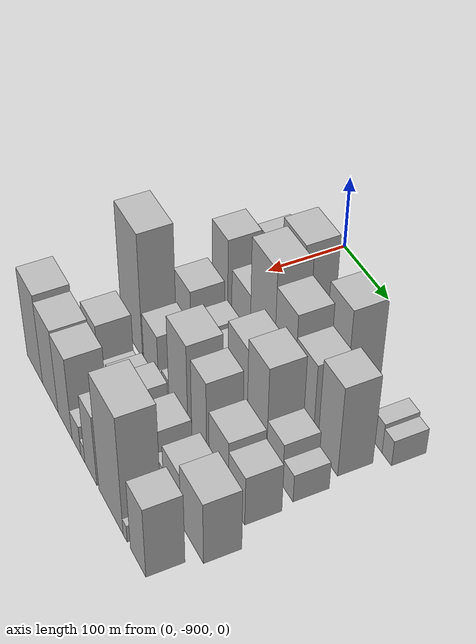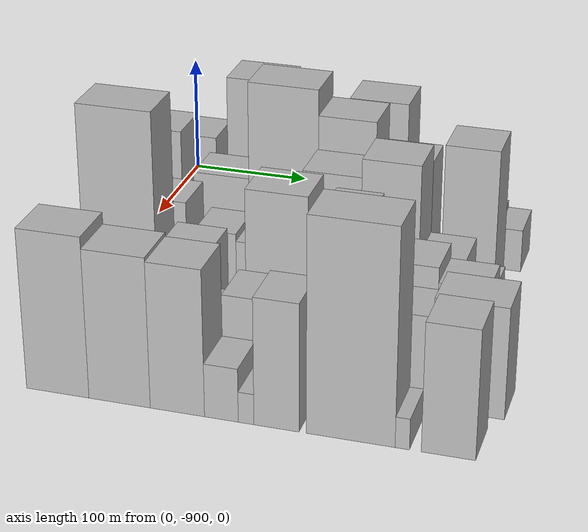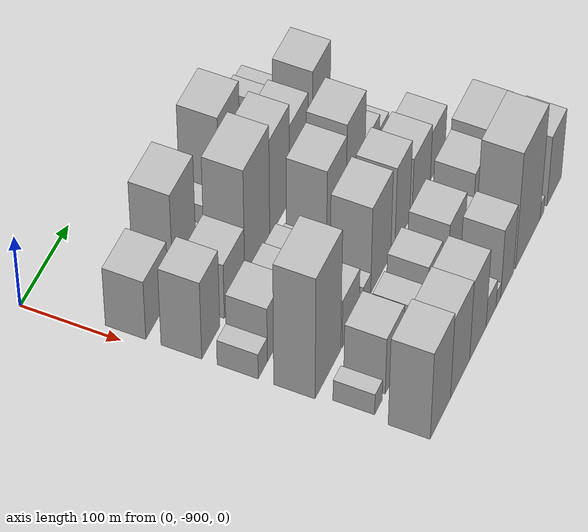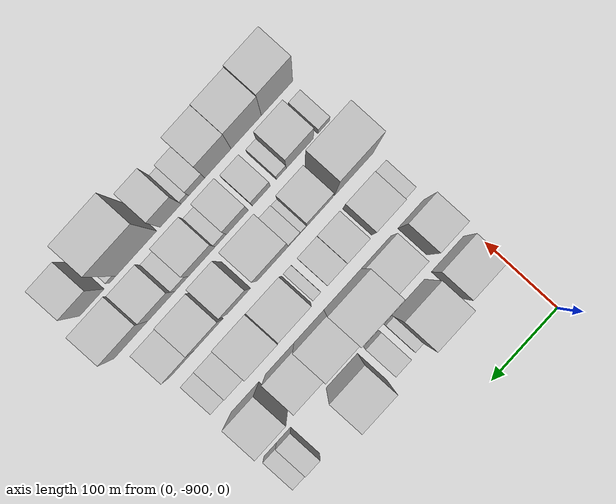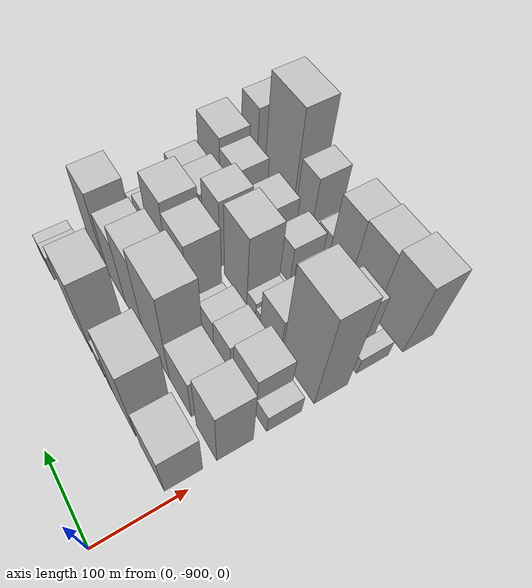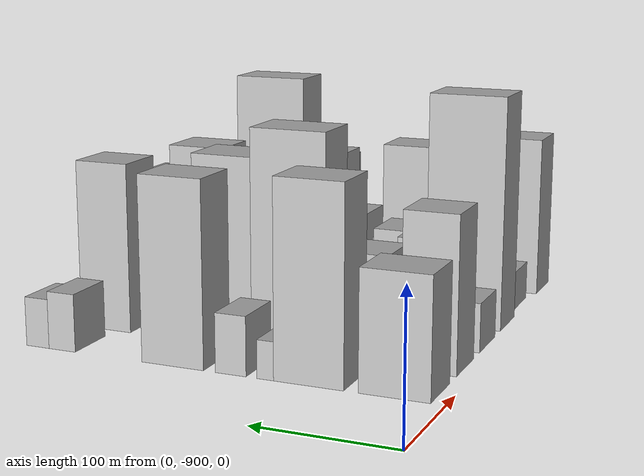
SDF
<sdf version="1.6">
 <world name="default">
  <model name="building_1">
   <static>1</static>
   <pose>100.0000 -865.4337 0 0.000000 0.000000 0.000000</pose>
   <link name="link">
    <pose>0 0 42.00 0 0 0</pose>
    <collision name="collision"><geometry><box><size>40.0000 49.1326 84.0000</size></box></geometry></collision>
    <visual name="visual">
     <cast_shadows>0</cast_shadows>
     <geometry><box><size>40.0000 49.1326 84.0000</size></box></geometry>
     <material>
      <script>
       <uri>model://HANNAS_wall/materials/scripts</uri>
       <uri>model://HANNAS_wall/materials/textures</uri>
       <name>vrc/HANNAS_wall</name>
      </script>
     </material>
    </visual>
   </link>
  </model>
  <model name="building_2">
   <static>1</static>
   <pose>100.0000 -805.9090 0 0.000000 0.000000 0.000000</pose>
   <link name="link">
    <pose>0 0 69.00 0 0 0</pose>
    <collision name="collision"><geometry><box><size>40.0000 49.9168 138.0000</size></box></geometry></collision>
    <visual name="visual">
     <cast_shadows>0</cast_shadows>
     <geometry><box><size>40.0000 49.9168 138.0000</size></box></geometry>
     <material>
      <script>
       <uri>model://HANNAS_wall/materials/scripts</uri>
       <uri>model://HANNAS_wall/materials/textures</uri>
       <name>vrc/HANNAS_wall</name>
      </script>
     </material>
    </visual>
   </link>
  </model>
  <model name="building_3">
   <static>1</static>
   <pose>100.0000 -774.8887 0 0.000000 0.000000 0.000000</pose>
   <link name="link">
    <pose>0 0 13.50 0 0 0</pose>
    <collision name="collision"><geometry><box><size>40.0000 12.1238 27.0000</size></box></geometry></collision>
    <visual name="visual">
     <cast_shadows>0</cast_shadows>
     <geometry><box><size>40.0000 12.1238 27.0000</size></box></geometry>
     <material>
      <script>
       <uri>model://HANNAS_wall/materials/scripts</uri>
       <uri>model://HANNAS_wall/materials/textures</uri>
       <name>vrc/HANNAS_wall</name>
      </script>
     </material>
    </visual>
   </link>
  </model>
  <model name="building_4">
   <static>1</static>
   <pose>100.0000 -749.3840 0 0.000000 0.000000 0.000000</pose>
   <link name="link">
    <pose>0 0 21.00 0 0 0</pose>
    <collision name="collision"><geometry><box><size>40.0000 22.8857 42.0000</size></box></geometry></collision>
    <visual name="visual">
     <cast_shadows>0</cast_shadows>
     <geometry><box><size>40.0000 22.8857 42.0000</size></box></geometry>
     <material>
      <script>
       <uri>model://HANNAS_wall/materials/scripts</uri>
       <uri>model://HANNAS_wall/materials/textures</uri>
       <name>vrc/HANNAS_wall</name>
      </script>
     </material>
    </visual>
   </link>
  </model>
  <model name="building_5">
   <static>1</static>
   <pose>100.0000 -705.1346 0 0.000000 0.000000 0.000000</pose>
   <link name="link">
    <pose>0 0 66.00 0 0 0</pose>
    <collision name="collision"><geometry><box><size>40.0000 47.6131 132.0000</size></box></geometry></collision>
    <visual name="visual">
     <cast_shadows>0</cast_shadows>
     <geometry><box><size>40.0000 47.6131 132.0000</size></box></geometry>
     <material>
      <script>
       <uri>model://HANNAS_wall/materials/scripts</uri>
       <uri>model://HANNAS_wall/materials/textures</uri>
       <name>vrc/HANNAS_wall</name>
      </script>
     </material>
    </visual>
   </link>
  </model>
  <model name="building_6">
   <static>1</static>
   <pose>100.0000 -616.7171 0 0.000000 0.000000 0.000000</pose>
   <link name="link">
    <pose>0 0 21.00 0 0 0</pose>
    <collision name="collision"><geometry><box><size>40.0000 21.7406 42.0000</size></box></geometry></collision>
    <visual name="visual">
     <cast_shadows>0</cast_shadows>
     <geometry><box><size>40.0000 21.7406 42.0000</size></box></geometry>
     <material>
      <script>
       <uri>model://HANNAS_wall/materials/scripts</uri>
       <uri>model://HANNAS_wall/materials/textures</uri>
       <name>vrc/HANNAS_wall</name>
      </script>
     </material>
    </visual>
   </link>
  </model>
  <model name="building_7">
   <static>1</static>
   <pose>100.0000 -596.4582 0 0.000000 0.000000 0.000000</pose>
   <link name="link">
    <pose>0 0 18.00 0 0 0</pose>
    <collision name="collision"><geometry><box><size>40.0000 18.7772 36.0000</size></box></geometry></collision>
    <visual name="visual">
     <cast_shadows>0</cast_shadows>
     <geometry><box><size>40.0000 18.7772 36.0000</size></box></geometry>
     <material>
      <script>
       <uri>model://HANNAS_wall/materials/scripts</uri>
       <uri>model://HANNAS_wall/materials/textures</uri>
       <name>vrc/HANNAS_wall</name>
      </script>
     </material>
    </visual>
   </link>
  </model>
  <model name="building_54">
   <static>1</static>
   <pose>155.0000 -870.3266 0 0.000000 0.000000 0.000000</pose>
   <link name="link">
    <pose>0 0 55.50 0 0 0</pose>
    <collision name="collision"><geometry><box><size>40.0000 39.3467 111.0000</size></box></geometry></collision>
    <visual name="visual">
     <cast_shadows>0</cast_shadows>
     <geometry><box><size>40.0000 39.3467 111.0000</size></box></geometry>
     <material>
      <script>
       <uri>model://HANNAS_wall/materials/scripts</uri>
       <uri>model://HANNAS_wall/materials/textures</uri>
       <name>vrc/HANNAS_wall</name>
      </script>
     </material>
    </visual>
   </link>
  </model>
  <model name="building_55">
   <static>1</static>
   <pose>155.0000 -817.9297 0 0.000000 0.000000 0.000000</pose>
   <link name="link">
    <pose>0 0 39.00 0 0 0</pose>
    <collision name="collision"><geometry><box><size>40.0000 45.4471 78.0000</size></box></geometry></collision>
    <visual name="visual">
     <cast_shadows>0</cast_shadows>
     <geometry><box><size>40.0000 45.4471 78.0000</size></box></geometry>
     <material>
      <script>
       <uri>model://HANNAS_wall/materials/scripts</uri>
       <uri>model://HANNAS_wall/materials/textures</uri>
       <name>vrc/HANNAS_wall</name>
      </script>
     </material>
    </visual>
   </link>
  </model>
  <model name="building_56">
   <static>1</static>
   <pose>155.0000 -767.0032 0 0.000000 0.000000 0.000000</pose>
   <link name="link">
    <pose>0 0 79.50 0 0 0</pose>
    <collision name="collision"><geometry><box><size>40.0000 56.4059 159.0000</size></box></geometry></collision>
    <visual name="visual">
     <cast_shadows>0</cast_shadows>
     <geometry><box><size>40.0000 56.4059 159.0000</size></box></geometry>
     <material>
      <script>
       <uri>model://HANNAS_wall/materials/scripts</uri>
       <uri>model://HANNAS_wall/materials/textures</uri>
       <name>vrc/HANNAS_wall</name>
      </script>
     </material>
    </visual>
   </link>
  </model>
  <model name="building_57">
   <static>1</static>
   <pose>155.0000 -716.0120 0 0.000000 0.000000 0.000000</pose>
   <link name="link">
    <pose>0 0 69.00 0 0 0</pose>
    <collision name="collision"><geometry><box><size>40.0000 45.5765 138.0000</size></box></geometry></collision>
    <visual name="visual">
     <cast_shadows>0</cast_shadows>
     <geometry><box><size>40.0000 45.5765 138.0000</size></box></geometry>
     <material>
      <script>
       <uri>model://HANNAS_wall/materials/scripts</uri>
       <uri>model://HANNAS_wall/materials/textures</uri>
       <name>vrc/HANNAS_wall</name>
      </script>
     </material>
    </visual>
   </link>
  </model>
  <model name="building_58">
   <static>1</static>
   <pose>155.0000 -671.6950 0 0.000000 0.000000 0.000000</pose>
   <link name="link">
    <pose>0 0 54.00 0 0 0</pose>
    <collision name="collision"><geometry><box><size>40.0000 43.0575 108.0000</size></box></geometry></collision>
    <visual name="visual">
     <cast_shadows>0</cast_shadows>
     <geometry><box><size>40.0000 43.0575 108.0000</size></box></geometry>
     <material>
      <script>
       <uri>model://HANNAS_wall/materials/scripts</uri>
       <uri>model://HANNAS_wall/materials/textures</uri>
       <name>vrc/HANNAS_wall</name>
      </script>
     </material>
    </visual>
   </link>
  </model>
  <model name="building_59">
   <static>1</static>
   <pose>155.0000 -619.2268 0 0.000000 0.000000 0.000000</pose>
   <link name="link">
    <pose>0 0 63.00 0 0 0</pose>
    <collision name="collision"><geometry><box><size>40.0000 41.8789 126.0000</size></box></geometry></collision>
    <visual name="visual">
     <cast_shadows>0</cast_shadows>
     <geometry><box><size>40.0000 41.8789 126.0000</size></box></geometry>
     <material>
      <script>
       <uri>model://HANNAS_wall/materials/scripts</uri>
       <uri>model://HANNAS_wall/materials/textures</uri>
       <name>vrc/HANNAS_wall</name>
      </script>
     </material>
    </visual>
   </link>
  </model>
  <model name="building_100">
   <static>1</static>
   <pose>210.0000 -879.9022 0 0.000000 0.000000 0.000000</pose>
   <link name="link">
    <pose>0 0 18.00 0 0 0</pose>
    <collision name="collision"><geometry><box><size>40.0000 20.1956 36.0000</size></box></geometry></collision>
    <visual name="visual">
     <cast_shadows>0</cast_shadows>
     <geometry><box><size>40.0000 20.1956 36.0000</size></box></geometry>
     <material>
      <script>
       <uri>model://HANNAS_wall/materials/scripts</uri>
       <uri>model://HANNAS_wall/materials/textures</uri>
       <name>vrc/HANNAS_wall</name>
      </script>
     </material>
    </visual>
   </link>
  </model>
  <model name="building_101">
   <static>1</static>
   <pose>210.0000 -848.7890 0 0.000000 0.000000 0.000000</pose>
   <link name="link">
    <pose>0 0 39.00 0 0 0</pose>
    <collision name="collision"><geometry><box><size>40.0000 42.0309 78.0000</size></box></geometry></collision>
    <visual name="visual">
     <cast_shadows>0</cast_shadows>
     <geometry><box><size>40.0000 42.0309 78.0000</size></box></geometry>
     <material>
      <script>
       <uri>model://HANNAS_wall/materials/scripts</uri>
       <uri>model://HANNAS_wall/materials/textures</uri>
       <name>vrc/HANNAS_wall</name>
      </script>
     </material>
    </visual>
   </link>
  </model>
  <model name="building_102">
   <static>1</static>
   <pose>210.0000 -804.4169 0 0.000000 0.000000 0.000000</pose>
   <link name="link">
    <pose>0 0 28.50 0 0 0</pose>
    <collision name="collision"><geometry><box><size>40.0000 32.7133 57.0000</size></box></geometry></collision>
    <visual name="visual">
     <cast_shadows>0</cast_shadows>
     <geometry><box><size>40.0000 32.7133 57.0000</size></box></geometry>
     <material>
      <script>
       <uri>model://HANNAS_wall/materials/scripts</uri>
       <uri>model://HANNAS_wall/materials/textures</uri>
       <name>vrc/HANNAS_wall</name>
      </script>
     </material>
    </visual>
   </link>
  </model>
  <model name="building_103">
   <static>1</static>
   <pose>210.0000 -773.6252 0 0.000000 0.000000 0.000000</pose>
   <link name="link">
    <pose>0 0 25.50 0 0 0</pose>
    <collision name="collision"><geometry><box><size>40.0000 28.8702 51.0000</size></box></geometry></collision>
    <visual name="visual">
     <cast_shadows>0</cast_shadows>
     <geometry><box><size>40.0000 28.8702 51.0000</size></box></geometry>
     <material>
      <script>
       <uri>model://HANNAS_wall/materials/scripts</uri>
       <uri>model://HANNAS_wall/materials/textures</uri>
       <name>vrc/HANNAS_wall</name>
      </script>
     </material>
    </visual>
   </link>
  </model>
  <model name="building_104">
   <static>1</static>
   <pose>210.0000 -744.2525 0 0.000000 0.000000 0.000000</pose>
   <link name="link">
    <pose>0 0 13.50 0 0 0</pose>
    <collision name="collision"><geometry><box><size>40.0000 11.8750 27.0000</size></box></geometry></collision>
    <visual name="visual">
     <cast_shadows>0</cast_shadows>
     <geometry><box><size>40.0000 11.8750 27.0000</size></box></geometry>
     <material>
      <script>
       <uri>model://HANNAS_wall/materials/scripts</uri>
       <uri>model://HANNAS_wall/materials/textures</uri>
       <name>vrc/HANNAS_wall</name>
      </script>
     </material>
    </visual>
   </link>
  </model>
  <model name="building_105">
   <static>1</static>
   <pose>210.0000 -712.7268 0 0.000000 0.000000 0.000000</pose>
   <link name="link">
    <pose>0 0 58.50 0 0 0</pose>
    <collision name="collision"><geometry><box><size>40.0000 45.1766 117.0000</size></box></geometry></collision>
    <visual name="visual">
     <cast_shadows>0</cast_shadows>
     <geometry><box><size>40.0000 45.1766 117.0000</size></box></geometry>
     <material>
      <script>
       <uri>model://HANNAS_wall/materials/scripts</uri>
       <uri>model://HANNAS_wall/materials/textures</uri>
       <name>vrc/HANNAS_wall</name>
      </script>
     </material>
    </visual>
   </link>
  </model>
  <model name="building_106">
   <static>1</static>
   <pose>210.0000 -667.9759 0 0.000000 0.000000 0.000000</pose>
   <link name="link">
    <pose>0 0 66.00 0 0 0</pose>
    <collision name="collision"><geometry><box><size>40.0000 44.3251 132.0000</size></box></geometry></collision>
    <visual name="visual">
     <cast_shadows>0</cast_shadows>
     <geometry><box><size>40.0000 44.3251 132.0000</size></box></geometry>
     <material>
      <script>
       <uri>model://HANNAS_wall/materials/scripts</uri>
       <uri>model://HANNAS_wall/materials/textures</uri>
       <name>vrc/HANNAS_wall</name>
      </script>
     </material>
    </visual>
   </link>
  </model>
  <model name="building_107">
   <static>1</static>
   <pose>210.0000 -628.2667 0 0.000000 0.000000 0.000000</pose>
   <link name="link">
    <pose>0 0 30.00 0 0 0</pose>
    <collision name="collision"><geometry><box><size>40.0000 35.0933 60.0000</size></box></geometry></collision>
    <visual name="visual">
     <cast_shadows>0</cast_shadows>
     <geometry><box><size>40.0000 35.0933 60.0000</size></box></geometry>
     <material>
      <script>
       <uri>model://HANNAS_wall/materials/scripts</uri>
       <uri>model://HANNAS_wall/materials/textures</uri>
       <name>vrc/HANNAS_wall</name>
      </script>
     </material>
    </visual>
   </link>
  </model>
  <model name="building_108">
   <static>1</static>
   <pose>210.0000 -599.4378 0 0.000000 0.000000 0.000000</pose>
   <link name="link">
    <pose>0 0 19.50 0 0 0</pose>
    <collision name="collision"><geometry><box><size>40.0000 22.5645 39.0000</size></box></geometry></collision>
    <visual name="visual">
     <cast_shadows>0</cast_shadows>
     <geometry><box><size>40.0000 22.5645 39.0000</size></box></geometry>
     <material>
      <script>
       <uri>model://HANNAS_wall/materials/scripts</uri>
       <uri>model://HANNAS_wall/materials/textures</uri>
       <name>vrc/HANNAS_wall</name>
      </script>
     </material>
    </visual>
   </link>
  </model>
  <model name="building_149">
   <static>1</static>
   <pose>265.0000 -860.9510 0 0.000000 0.000000 0.000000</pose>
   <link name="link">
    <pose>0 0 87.00 0 0 0</pose>
    <collision name="collision"><geometry><box><size>40.0000 58.0979 174.0000</size></box></geometry></collision>
    <visual name="visual">
     <cast_shadows>0</cast_shadows>
     <geometry><box><size>40.0000 58.0979 174.0000</size></box></geometry>
     <material>
      <script>
       <uri>model://HANNAS_wall/materials/scripts</uri>
       <uri>model://HANNAS_wall/materials/textures</uri>
       <name>vrc/HANNAS_wall</name>
      </script>
     </material>
    </visual>
   </link>
  </model>
  <model name="building_150">
   <static>1</static>
   <pose>265.0000 -809.2157 0 0.000000 0.000000 0.000000</pose>
   <link name="link">
    <pose>0 0 34.50 0 0 0</pose>
    <collision name="collision"><geometry><box><size>40.0000 39.3727 69.0000</size></box></geometry></collision>
    <visual name="visual">
     <cast_shadows>0</cast_shadows>
     <geometry><box><size>40.0000 39.3727 69.0000</size></box></geometry>
     <material>
      <script>
       <uri>model://HANNAS_wall/materials/scripts</uri>
       <uri>model://HANNAS_wall/materials/textures</uri>
       <name>vrc/HANNAS_wall</name>
      </script>
     </material>
    </visual>
   </link>
  </model>
  <model name="building_151">
   <static>1</static>
   <pose>265.0000 -784.8930 0 0.000000 0.000000 0.000000</pose>
   <link name="link">
    <pose>0 0 10.50 0 0 0</pose>
    <collision name="collision"><geometry><box><size>40.0000 9.2728 21.0000</size></box></geometry></collision>
    <visual name="visual">
     <cast_shadows>0</cast_shadows>
     <geometry><box><size>40.0000 9.2728 21.0000</size></box></geometry>
     <material>
      <script>
       <uri>model://HANNAS_wall/materials/scripts</uri>
       <uri>model://HANNAS_wall/materials/textures</uri>
       <name>vrc/HANNAS_wall</name>
      </script>
     </material>
    </visual>
   </link>
  </model>
  <model name="building_152">
   <static>1</static>
   <pose>265.0000 -771.2846 0 0.000000 0.000000 0.000000</pose>
   <link name="link">
    <pose>0 0 15.00 0 0 0</pose>
    <collision name="collision"><geometry><box><size>40.0000 17.9439 30.0000</size></box></geometry></collision>
    <visual name="visual">
     <cast_shadows>0</cast_shadows>
     <geometry><box><size>40.0000 17.9439 30.0000</size></box></geometry>
     <material>
      <script>
       <uri>model://HANNAS_wall/materials/scripts</uri>
       <uri>model://HANNAS_wall/materials/textures</uri>
       <name>vrc/HANNAS_wall</name>
      </script>
     </material>
    </visual>
   </link>
  </model>
  <model name="building_153">
   <static>1</static>
   <pose>265.0000 -738.6752 0 0.000000 0.000000 0.000000</pose>
   <link name="link">
    <pose>0 0 61.50 0 0 0</pose>
    <collision name="collision"><geometry><box><size>40.0000 47.2751 123.0000</size></box></geometry></collision>
    <visual name="visual">
     <cast_shadows>0</cast_shadows>
     <geometry><box><size>40.0000 47.2751 123.0000</size></box></geometry>
     <material>
      <script>
       <uri>model://HANNAS_wall/materials/scripts</uri>
       <uri>model://HANNAS_wall/materials/textures</uri>
       <name>vrc/HANNAS_wall</name>
      </script>
     </material>
    </visual>
   </link>
  </model>
  <model name="building_154">
   <static>1</static>
   <pose>265.0000 -687.3267 0 0.000000 0.000000 0.000000</pose>
   <link name="link">
    <pose>0 0 57.00 0 0 0</pose>
    <collision name="collision"><geometry><box><size>40.0000 35.4218 114.0000</size></box></geometry></collision>
    <visual name="visual">
     <cast_shadows>0</cast_shadows>
     <geometry><box><size>40.0000 35.4218 114.0000</size></box></geometry>
     <material>
      <script>
       <uri>model://HANNAS_wall/materials/scripts</uri>
       <uri>model://HANNAS_wall/materials/textures</uri>
       <name>vrc/HANNAS_wall</name>
      </script>
     </material>
    </visual>
   </link>
  </model>
  <model name="building_155">
   <static>1</static>
   <pose>265.0000 -641.3528 0 0.000000 0.000000 0.000000</pose>
   <link name="link">
    <pose>0 0 40.50 0 0 0</pose>
    <collision name="collision"><geometry><box><size>40.0000 44.5261 81.0000</size></box></geometry></collision>
    <visual name="visual">
     <cast_shadows>0</cast_shadows>
     <geometry><box><size>40.0000 44.5261 81.0000</size></box></geometry>
     <material>
      <script>
       <uri>model://HANNAS_wall/materials/scripts</uri>
       <uri>model://HANNAS_wall/materials/textures</uri>
       <name>vrc/HANNAS_wall</name>
      </script>
     </material>
    </visual>
   </link>
  </model>
  <model name="building_156">
   <static>1</static>
   <pose>265.0000 -600.9685 0 0.000000 0.000000 0.000000</pose>
   <link name="link">
    <pose>0 0 34.50 0 0 0</pose>
    <collision name="collision"><geometry><box><size>40.0000 36.2424 69.0000</size></box></geometry></collision>
    <visual name="visual">
     <cast_shadows>0</cast_shadows>
     <geometry><box><size>40.0000 36.2424 69.0000</size></box></geometry>
     <material>
      <script>
       <uri>model://HANNAS_wall/materials/scripts</uri>
       <uri>model://HANNAS_wall/materials/textures</uri>
       <name>vrc/HANNAS_wall</name>
      </script>
     </material>
    </visual>
   </link>
  </model>
  <model name="building_198">
   <static>1</static>
   <pose>320.0000 -876.2742 0 0.000000 0.000000 0.000000</pose>
   <link name="link">
    <pose>0 0 15.00 0 0 0</pose>
    <collision name="collision"><geometry><box><size>40.0000 17.4515 30.0000</size></box></geometry></collision>
    <visual name="visual">
     <cast_shadows>0</cast_shadows>
     <geometry><box><size>40.0000 17.4515 30.0000</size></box></geometry>
     <material>
      <script>
       <uri>model://HANNAS_wall/materials/scripts</uri>
       <uri>model://HANNAS_wall/materials/textures</uri>
       <name>vrc/HANNAS_wall</name>
      </script>
     </material>
    </visual>
   </link>
  </model>
  <model name="building_199">
   <static>1</static>
   <pose>320.0000 -840.0806 0 0.000000 0.000000 0.000000</pose>
   <link name="link">
    <pose>0 0 40.50 0 0 0</pose>
    <collision name="collision"><geometry><box><size>40.0000 40.9357 81.0000</size></box></geometry></collision>
    <visual name="visual">
     <cast_shadows>0</cast_shadows>
     <geometry><box><size>40.0000 40.9357 81.0000</size></box></geometry>
     <material>
      <script>
       <uri>model://HANNAS_wall/materials/scripts</uri>
       <uri>model://HANNAS_wall/materials/textures</uri>
       <name>vrc/HANNAS_wall</name>
      </script>
     </material>
    </visual>
   </link>
  </model>
  <model name="building_200">
   <static>1</static>
   <pose>320.0000 -812.1042 0 0.000000 0.000000 0.000000</pose>
   <link name="link">
    <pose>0 0 15.00 0 0 0</pose>
    <collision name="collision"><geometry><box><size>40.0000 15.0173 30.0000</size></box></geometry></collision>
    <visual name="visual">
     <cast_shadows>0</cast_shadows>
     <geometry><box><size>40.0000 15.0173 30.0000</size></box></geometry>
     <material>
      <script>
       <uri>model://HANNAS_wall/materials/scripts</uri>
       <uri>model://HANNAS_wall/materials/textures</uri>
       <name>vrc/HANNAS_wall</name>
      </script>
     </material>
    </visual>
   </link>
  </model>
  <model name="building_201">
   <static>1</static>
   <pose>320.0000 -781.9552 0 0.000000 0.000000 0.000000</pose>
   <link name="link">
    <pose>0 0 24.00 0 0 0</pose>
    <collision name="collision"><geometry><box><size>40.0000 27.2806 48.0000</size></box></geometry></collision>
    <visual name="visual">
     <cast_shadows>0</cast_shadows>
     <geometry><box><size>40.0000 27.2806 48.0000</size></box></geometry>
     <material>
      <script>
       <uri>model://HANNAS_wall/materials/scripts</uri>
       <uri>model://HANNAS_wall/materials/textures</uri>
       <name>vrc/HANNAS_wall</name>
      </script>
     </material>
    </visual>
   </link>
  </model>
  <model name="building_202">
   <static>1</static>
   <pose>320.0000 -745.6546 0 0.000000 0.000000 0.000000</pose>
   <link name="link">
    <pose>0 0 33.00 0 0 0</pose>
    <collision name="collision"><geometry><box><size>40.0000 33.3207 66.0000</size></box></geometry></collision>
    <visual name="visual">
     <cast_shadows>0</cast_shadows>
     <geometry><box><size>40.0000 33.3207 66.0000</size></box></geometry>
     <material>
      <script>
       <uri>model://HANNAS_wall/materials/scripts</uri>
       <uri>model://HANNAS_wall/materials/textures</uri>
       <name>vrc/HANNAS_wall</name>
      </script>
     </material>
    </visual>
   </link>
  </model>
  <model name="building_203">
   <static>1</static>
   <pose>320.0000 -720.6482 0 0.000000 0.000000 0.000000</pose>
   <link name="link">
    <pose>0 0 16.50 0 0 0</pose>
    <collision name="collision"><geometry><box><size>40.0000 16.6921 33.0000</size></box></geometry></collision>
    <visual name="visual">
     <cast_shadows>0</cast_shadows>
     <geometry><box><size>40.0000 16.6921 33.0000</size></box></geometry>
     <material>
      <script>
       <uri>model://HANNAS_wall/materials/scripts</uri>
       <uri>model://HANNAS_wall/materials/textures</uri>
       <name>vrc/HANNAS_wall</name>
      </script>
     </material>
    </visual>
   </link>
  </model>
  <model name="building_204">
   <static>1</static>
   <pose>320.0000 -691.6612 0 0.000000 0.000000 0.000000</pose>
   <link name="link">
    <pose>0 0 34.50 0 0 0</pose>
    <collision name="collision"><geometry><box><size>40.0000 41.2819 69.0000</size></box></geometry></collision>
    <visual name="visual">
     <cast_shadows>0</cast_shadows>
     <geometry><box><size>40.0000 41.2819 69.0000</size></box></geometry>
     <material>
      <script>
       <uri>model://HANNAS_wall/materials/scripts</uri>
       <uri>model://HANNAS_wall/materials/textures</uri>
       <name>vrc/HANNAS_wall</name>
      </script>
     </material>
    </visual>
   </link>
  </model>
  <model name="building_205">
   <static>1</static>
   <pose>320.0000 -660.9012 0 0.000000 0.000000 0.000000</pose>
   <link name="link">
    <pose>0 0 19.50 0 0 0</pose>
    <collision name="collision"><geometry><box><size>40.0000 20.2382 39.0000</size></box></geometry></collision>
    <visual name="visual">
     <cast_shadows>0</cast_shadows>
     <geometry><box><size>40.0000 20.2382 39.0000</size></box></geometry>
     <material>
      <script>
       <uri>model://HANNAS_wall/materials/scripts</uri>
       <uri>model://HANNAS_wall/materials/textures</uri>
       <name>vrc/HANNAS_wall</name>
      </script>
     </material>
    </visual>
   </link>
  </model>
  <model name="building_206">
   <static>1</static>
   <pose>320.0000 -630.5078 0 0.000000 0.000000 0.000000</pose>
   <link name="link">
    <pose>0 0 36.00 0 0 0</pose>
    <collision name="collision"><geometry><box><size>40.0000 40.5485 72.0000</size></box></geometry></collision>
    <visual name="visual">
     <cast_shadows>0</cast_shadows>
     <geometry><box><size>40.0000 40.5485 72.0000</size></box></geometry>
     <material>
      <script>
       <uri>model://HANNAS_wall/materials/scripts</uri>
       <uri>model://HANNAS_wall/materials/textures</uri>
       <name>vrc/HANNAS_wall</name>
      </script>
     </material>
    </visual>
   </link>
  </model>
  <model name="building_207">
   <static>1</static>
   <pose>320.0000 -584.3606 0 0.000000 0.000000 0.000000</pose>
   <link name="link">
    <pose>0 0 43.50 0 0 0</pose>
    <collision name="collision"><geometry><box><size>40.0000 51.7460 87.0000</size></box></geometry></collision>
    <visual name="visual">
     <cast_shadows>0</cast_shadows>
     <geometry><box><size>40.0000 51.7460 87.0000</size></box></geometry>
     <material>
      <script>
       <uri>model://HANNAS_wall/materials/scripts</uri>
       <uri>model://HANNAS_wall/materials/textures</uri>
       <name>vrc/HANNAS_wall</name>
      </script>
     </material>
    </visual>
   </link>
  </model>
  <model name="building_244">
   <static>1</static>
   <pose>375.0000 -866.3090 0 0.000000 0.000000 0.000000</pose>
   <link name="link">
    <pose>0 0 63.00 0 0 0</pose>
    <collision name="collision"><geometry><box><size>40.0000 47.3820 126.0000</size></box></geometry></collision>
    <visual name="visual">
     <cast_shadows>0</cast_shadows>
     <geometry><box><size>40.0000 47.3820 126.0000</size></box></geometry>
     <material>
      <script>
       <uri>model://HANNAS_wall/materials/scripts</uri>
       <uri>model://HANNAS_wall/materials/textures</uri>
       <name>vrc/HANNAS_wall</name>
      </script>
     </material>
    </visual>
   </link>
  </model>
  <model name="building_245">
   <static>1</static>
   <pose>375.0000 -819.7347 0 0.000000 0.000000 0.000000</pose>
   <link name="link">
    <pose>0 0 58.50 0 0 0</pose>
    <collision name="collision"><geometry><box><size>40.0000 45.7667 117.0000</size></box></geometry></collision>
    <visual name="visual">
     <cast_shadows>0</cast_shadows>
     <geometry><box><size>40.0000 45.7667 117.0000</size></box></geometry>
     <material>
      <script>
       <uri>model://HANNAS_wall/materials/scripts</uri>
       <uri>model://HANNAS_wall/materials/textures</uri>
       <name>vrc/HANNAS_wall</name>
      </script>
     </material>
    </visual>
   </link>
  </model>
  <model name="building_246">
   <static>1</static>
   <pose>375.0000 -776.9311 0 0.000000 0.000000 0.000000</pose>
   <link name="link">
    <pose>0 0 57.00 0 0 0</pose>
    <collision name="collision"><geometry><box><size>40.0000 39.8404 114.0000</size></box></geometry></collision>
    <visual name="visual">
     <cast_shadows>0</cast_shadows>
     <geometry><box><size>40.0000 39.8404 114.0000</size></box></geometry>
     <material>
      <script>
       <uri>model://HANNAS_wall/materials/scripts</uri>
       <uri>model://HANNAS_wall/materials/textures</uri>
       <name>vrc/HANNAS_wall</name>
      </script>
     </material>
    </visual>
   </link>
  </model>
  <model name="building_247">
   <static>1</static>
   <pose>375.0000 -744.8078 0 0.000000 0.000000 0.000000</pose>
   <link name="link">
    <pose>0 0 21.00 0 0 0</pose>
    <collision name="collision"><geometry><box><size>40.0000 24.4062 42.0000</size></box></geometry></collision>
    <visual name="visual">
     <cast_shadows>0</cast_shadows>
     <geometry><box><size>40.0000 24.4062 42.0000</size></box></geometry>
     <material>
      <script>
       <uri>model://HANNAS_wall/materials/scripts</uri>
       <uri>model://HANNAS_wall/materials/textures</uri>
       <name>vrc/HANNAS_wall</name>
      </script>
     </material>
    </visual>
   </link>
  </model>
  <model name="building_248">
   <static>1</static>
   <pose>375.0000 -726.9784 0 0.000000 0.000000 0.000000</pose>
   <link name="link">
    <pose>0 0 12.00 0 0 0</pose>
    <collision name="collision"><geometry><box><size>40.0000 11.2528 24.0000</size></box></geometry></collision>
    <visual name="visual">
     <cast_shadows>0</cast_shadows>
     <geometry><box><size>40.0000 11.2528 24.0000</size></box></geometry>
     <material>
      <script>
       <uri>model://HANNAS_wall/materials/scripts</uri>
       <uri>model://HANNAS_wall/materials/textures</uri>
       <name>vrc/HANNAS_wall</name>
      </script>
     </material>
    </visual>
   </link>
  </model>
  <model name="building_249">
   <static>1</static>
   <pose>375.0000 -705.2609 0 0.000000 0.000000 0.000000</pose>
   <link name="link">
    <pose>0 0 49.50 0 0 0</pose>
    <collision name="collision"><geometry><box><size>40.0000 32.1820 99.0000</size></box></geometry></collision>
    <visual name="visual">
     <cast_shadows>0</cast_shadows>
     <geometry><box><size>40.0000 32.1820 99.0000</size></box></geometry>
     <material>
      <script>
       <uri>model://HANNAS_wall/materials/scripts</uri>
       <uri>model://HANNAS_wall/materials/textures</uri>
       <name>vrc/HANNAS_wall</name>
      </script>
     </material>
    </visual>
   </link>
  </model>
  <model name="building_250">
   <static>1</static>
   <pose>375.0000 -653.1786 0 0.000000 0.000000 0.000000</pose>
   <link name="link">
    <pose>0 0 82.50 0 0 0</pose>
    <collision name="collision"><geometry><box><size>40.0000 61.9826 165.0000</size></box></geometry></collision>
    <visual name="visual">
     <cast_shadows>0</cast_shadows>
     <geometry><box><size>40.0000 61.9826 165.0000</size></box></geometry>
     <material>
      <script>
       <uri>model://HANNAS_wall/materials/scripts</uri>
       <uri>model://HANNAS_wall/materials/textures</uri>
       <name>vrc/HANNAS_wall</name>
      </script>
     </material>
    </visual>
   </link>
  </model>
  <model name="building_251">
   <static>1</static>
   <pose>375.0000 -617.2357 0 0.000000 0.000000 0.000000</pose>
   <link name="link">
    <pose>0 0 12.00 0 0 0</pose>
    <collision name="collision"><geometry><box><size>40.0000 9.9034 24.0000</size></box></geometry></collision>
    <visual name="visual">
     <cast_shadows>0</cast_shadows>
     <geometry><box><size>40.0000 9.9034 24.0000</size></box></geometry>
     <material>
      <script>
       <uri>model://HANNAS_wall/materials/scripts</uri>
       <uri>model://HANNAS_wall/materials/textures</uri>
       <name>vrc/HANNAS_wall</name>
      </script>
     </material>
    </visual>
   </link>
  </model>
  <model name="building_252">
   <static>1</static>
   <pose>375.0000 -585.8013 0 0.000000 0.000000 0.000000</pose>
   <link name="link">
    <pose>0 0 49.50 0 0 0</pose>
    <collision name="collision"><geometry><box><size>40.0000 36.9654 99.0000</size></box></geometry></collision>
    <visual name="visual">
     <cast_shadows>0</cast_shadows>
     <geometry><box><size>40.0000 36.9654 99.0000</size></box></geometry>
     <material>
      <script>
       <uri>model://HANNAS_wall/materials/scripts</uri>
       <uri>model://HANNAS_wall/materials/textures</uri>
       <name>vrc/HANNAS_wall</name>
      </script>
     </material>
    </visual>
   </link>
  </model>
 </world>
</sdf>
